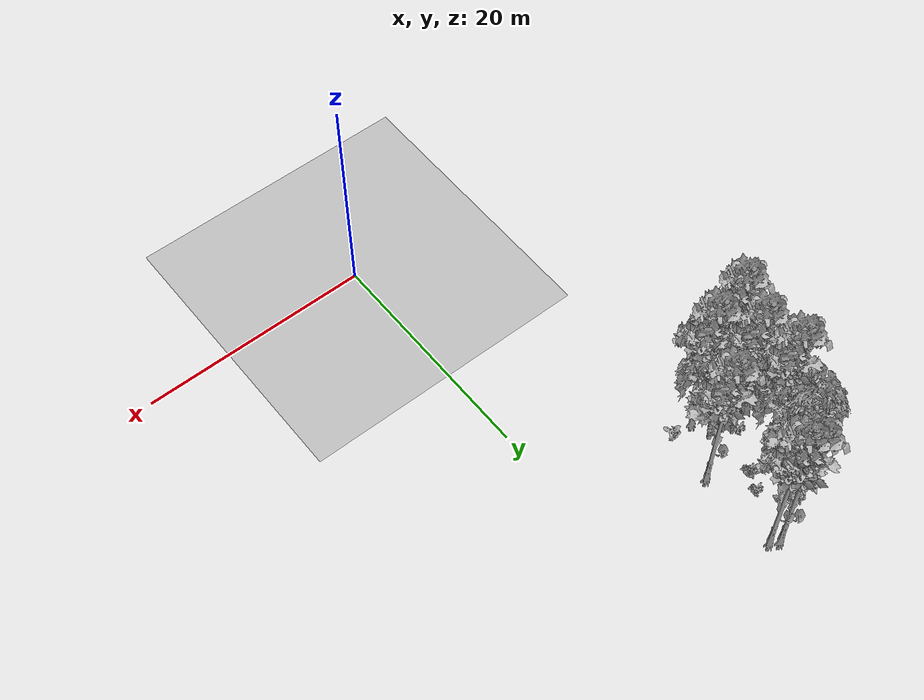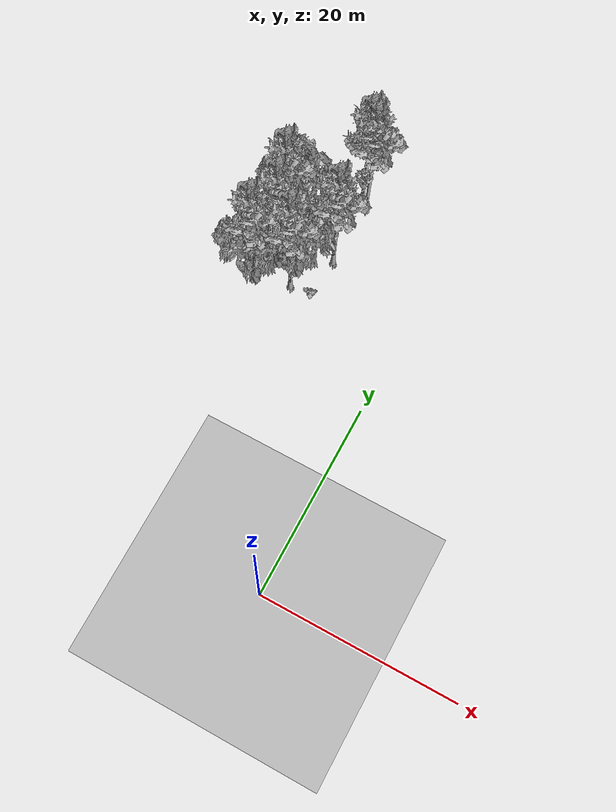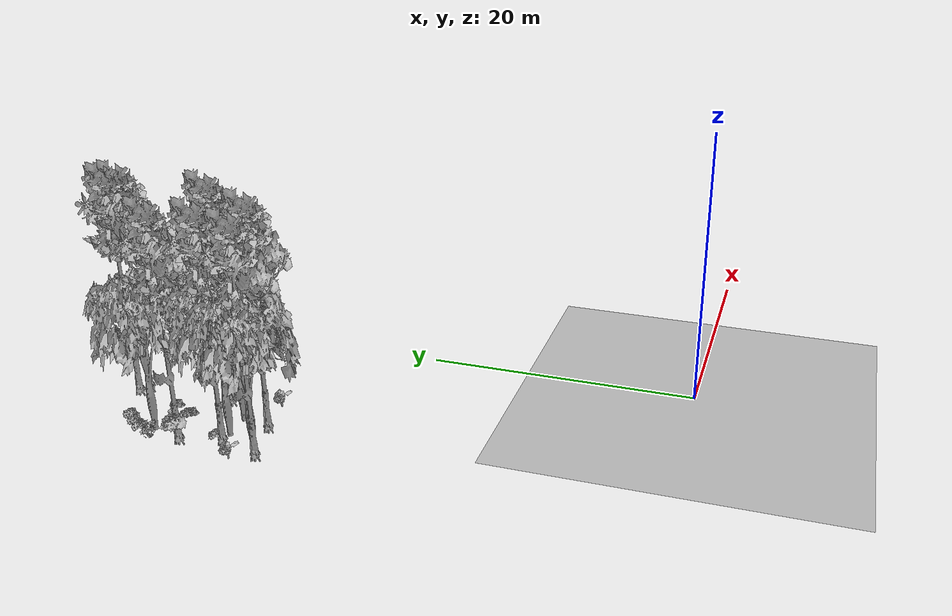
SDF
<sdf version="1.7">
 <world name="default">
  <model name="ground_plane">
   <static>1</static>
   <link name="link">
    <collision name="collision">
     <pose>-50 0 0 0 -0 0</pose>
     <geometry><plane><normal>0 0 1</normal><size>80 80</size></plane></geometry>
     <surface><contact><ode><min_depth>0.01</min_depth><max_vel>0</max_vel></ode></contact></surface>
    </collision>
    <visual name="grass">
     <cast_shadows>0</cast_shadows>
     <geometry>
      <mesh>
       <scale>0.46714285714285714 0.46714285714285714 0.1</scale>
       <uri>file://grass_plane/meshes/grass_plane.dae</uri>
      </mesh>
     </geometry>
    </visual>
   </link>
  </model>
  <model name="Tree 3">
   <static>1</static>
   <pose>-9.5421922092418 39.27774204575255 0 1.57079 -0 0</pose>
   <link name="link">
    <collision name="collision">
     <geometry><mesh><scale>3.5 5 3.5</scale><uri>model://tree_9/meshes/tree_9.obj</uri></mesh></geometry>
    </collision>
    <visual name="visual">
     <geometry><mesh><scale>3.5 5 3.5</scale><uri>model://tree_9/meshes/tree_9.obj</uri></mesh></geometry>
    </visual>
   </link>
  </model>
  <model name="Tree 19">
   <static>1</static>
   <pose>-14.435010337102057 29.73800944745875 0 1.57079 -0 0</pose>
   <link name="link">
    <collision name="collision">
     <geometry><mesh><scale>3.5 5 3.5</scale><uri>model://tree_2/meshes/tree_2.obj</uri></mesh></geometry>
    </collision>
    <visual name="visual">
     <geometry><mesh><scale>3.5 5 3.5</scale><uri>model://tree_2/meshes/tree_2.obj</uri></mesh></geometry>
    </visual>
   </link>
  </model>
  <model name="Tree 35">
   <static>1</static>
   <pose>-12.403865683885638 29.776129863272672 0 1.57079 -0 0</pose>
   <link name="link">
    <collision name="collision">
     <geometry><mesh><scale>3.5 5 3.5</scale><uri>model://tree_2/meshes/tree_2.obj</uri></mesh></geometry>
    </collision>
    <visual name="visual">
     <geometry><mesh><scale>3.5 5 3.5</scale><uri>model://tree_2/meshes/tree_2.obj</uri></mesh></geometry>
    </visual>
   </link>
  </model>
  <model name="Tree 48">
   <static>1</static>
   <pose>-15.622506386705606 27.21009930620589 0 1.57079 -0 0</pose>
   <link name="link">
    <collision name="collision">
     <geometry><mesh><scale>3.5 5 3.5</scale><uri>model://tree_9/meshes/tree_9.obj</uri></mesh></geometry>
    </collision>
    <visual name="visual">
     <geometry><mesh><scale>3.5 5 3.5</scale><uri>model://tree_9/meshes/tree_9.obj</uri></mesh></geometry>
    </visual>
   </link>
  </model>
  <model name="Tree 104">
   <static>1</static>
   <pose>-15.543162388622335 27.344211763779 0 1.57079 -0 0</pose>
   <link name="link">
    <collision name="collision">
     <geometry><mesh><scale>3.5 5 3.5</scale><uri>model://tree_2/meshes/tree_2.obj</uri></mesh></geometry>
    </collision>
    <visual name="visual">
     <geometry><mesh><scale>3.5 5 3.5</scale><uri>model://tree_2/meshes/tree_2.obj</uri></mesh></geometry>
    </visual>
   </link>
  </model>
  <model name="Tree 159">
   <static>1</static>
   <pose>-10.224188996341688 39.71371599480747 0 1.57079 -0 0</pose>
   <link name="link">
    <collision name="collision">
     <geometry><mesh><scale>3.5 5 3.5</scale><uri>model://tree_9/meshes/tree_9.obj</uri></mesh></geometry>
    </collision>
    <visual name="visual">
     <geometry><mesh><scale>3.5 5 3.5</scale><uri>model://tree_9/meshes/tree_9.obj</uri></mesh></geometry>
    </visual>
   </link>
  </model>
  <model name="Tree 296">
   <static>1</static>
   <pose>-15.242229467819381 35.08452450440916 0 1.57079 -0 0</pose>
   <link name="link">
    <collision name="collision">
     <geometry><mesh><scale>3.5 5 3.5</scale><uri>model://tree_2/meshes/tree_2.obj</uri></mesh></geometry>
    </collision>
    <visual name="visual">
     <geometry><mesh><scale>3.5 5 3.5</scale><uri>model://tree_2/meshes/tree_2.obj</uri></mesh></geometry>
    </visual>
   </link>
  </model>
  <model name="Tree 322">
   <static>1</static>
   <pose>-12.139037443287283 28.06415280238363 0 1.57079 -0 0</pose>
   <link name="link">
    <collision name="collision">
     <geometry><mesh><scale>3.5 5 3.5</scale><uri>model://tree_9/meshes/tree_9.obj</uri></mesh></geometry>
    </collision>
    <visual name="visual">
     <geometry><mesh><scale>3.5 5 3.5</scale><uri>model://tree_9/meshes/tree_9.obj</uri></mesh></geometry>
    </visual>
   </link>
  </model>
  <model name="Tree 410">
   <static>1</static>
   <pose>-14.568322799887763 30.27594175709484 0 1.57079 -0 0</pose>
   <link name="link">
    <collision name="collision">
     <geometry><mesh><scale>3.5 5 3.5</scale><uri>model://tree_9/meshes/tree_9.obj</uri></mesh></geometry>
    </collision>
    <visual name="visual">
     <geometry><mesh><scale>3.5 5 3.5</scale><uri>model://tree_9/meshes/tree_9.obj</uri></mesh></geometry>
    </visual>
   </link>
  </model>
  <model name="Tree 470">
   <static>1</static>
   <pose>-15.314775919343546 33.21569692411181 0 1.57079 -0 0</pose>
   <link name="link">
    <collision name="collision">
     <geometry><mesh><scale>3.5 5 3.5</scale><uri>model://tree_9/meshes/tree_9.obj</uri></mesh></geometry>
    </collision>
    <visual name="visual">
     <geometry><mesh><scale>3.5 5 3.5</scale><uri>model://tree_9/meshes/tree_9.obj</uri></mesh></geometry>
    </visual>
   </link>
  </model>
  <model name="Tree 550">
   <static>1</static>
   <pose>-9.635084598036368 32.35782786984353 0 1.57079 -0 0</pose>
   <link name="link">
    <collision name="collision">
     <geometry><mesh><scale>3.5 5 3.5</scale><uri>model://tree_9/meshes/tree_9.obj</uri></mesh></geometry>
    </collision>
    <visual name="visual">
     <geometry><mesh><scale>3.5 5 3.5</scale><uri>model://tree_9/meshes/tree_9.obj</uri></mesh></geometry>
    </visual>
   </link>
  </model>
  <model name="Bush 9">
   <static>1</static>
   <pose>-14.711560305437438 37.097601599377455 0 1.57079 -0 0</pose>
   <link name="link">
    <collision name="collision">
     <geometry><mesh><scale>2 2 2</scale><uri>model://bush_2/meshes/bush_2.obj</uri></mesh></geometry>
     <surface><contact><collide_without_contact>false</collide_without_contact></contact></surface>
    </collision>
    <visual name="visual">
     <geometry><mesh><scale>2 2 2</scale><uri>model://bush_2/meshes/bush_2.obj</uri></mesh></geometry>
    </visual>
   </link>
  </model>
  <model name="Bush 20">
   <static>1</static>
   <pose>-14.67533070310483 34.250292849628934 0 1.57079 -0 0</pose>
   <link name="link">
    <collision name="collision">
     <geometry><mesh><scale>2 2 2</scale><uri>model://bush_2/meshes/bush_2.obj</uri></mesh></geometry>
     <surface><contact><collide_without_contact>false</collide_without_contact></contact></surface>
    </collision>
    <visual name="visual">
     <geometry><mesh><scale>2 2 2</scale><uri>model://bush_2/meshes/bush_2.obj</uri></mesh></geometry>
    </visual>
   </link>
  </model>
  <model name="Bush 33">
   <static>1</static>
   <pose>-11.991060239042348 35.390673722926905 0 1.57079 -0 0</pose>
   <link name="link">
    <collision name="collision">
     <geometry><mesh><scale>2 2 2</scale><uri>model://bush_2/meshes/bush_2.obj</uri></mesh></geometry>
     <surface><contact><collide_without_contact>false</collide_without_contact></contact></surface>
    </collision>
    <visual name="visual">
     <geometry><mesh><scale>2 2 2</scale><uri>model://bush_2/meshes/bush_2.obj</uri></mesh></geometry>
    </visual>
   </link>
  </model>
  <model name="Bush 178">
   <static>1</static>
   <pose>-14.033733256788246 37.88514602820143 0 1.57079 -0 0</pose>
   <link name="link">
    <collision name="collision">
     <geometry><mesh><scale>2 2 2</scale><uri>model://bush_2/meshes/bush_2.obj</uri></mesh></geometry>
     <surface><contact><collide_without_contact>false</collide_without_contact></contact></surface>
    </collision>
    <visual name="visual">
     <geometry><mesh><scale>2 2 2</scale><uri>model://bush_2/meshes/bush_2.obj</uri></mesh></geometry>
    </visual>
   </link>
  </model>
  <model name="Bush 219">
   <static>1</static>
   <pose>-12.70381020477501 33.8205823773188 0 1.57079 -0 0</pose>
   <link name="link">
    <collision name="collision">
     <geometry><mesh><scale>2 2 2</scale><uri>model://bush_2/meshes/bush_2.obj</uri></mesh></geometry>
     <surface><contact><collide_without_contact>false</collide_without_contact></contact></surface>
    </collision>
    <visual name="visual">
     <geometry><mesh><scale>2 2 2</scale><uri>model://bush_2/meshes/bush_2.obj</uri></mesh></geometry>
    </visual>
   </link>
  </model>
  <model name="Bush 225">
   <static>1</static>
   <pose>-16.987587127615516 28.390728275133867 0 1.57079 -0 0</pose>
   <link name="link">
    <collision name="collision">
     <geometry><mesh><scale>2 2 2</scale><uri>model://bush_0/meshes/bush_0.obj</uri></mesh></geometry>
     <surface><contact><collide_without_contact>false</collide_without_contact></contact></surface>
    </collision>
    <visual name="visual">
     <geometry><mesh><scale>2 2 2</scale><uri>model://bush_0/meshes/bush_0.obj</uri></mesh></geometry>
    </visual>
   </link>
  </model>
  <model name="Bush 372">
   <static>1</static>
   <pose>-15.440650795324828 33.22850985493298 0 1.57079 -0 0</pose>
   <link name="link">
    <collision name="collision">
     <geometry><mesh><scale>2 2 2</scale><uri>model://bush_1/meshes/bush_1.obj</uri></mesh></geometry>
     <surface><contact><collide_without_contact>false</collide_without_contact></contact></surface>
    </collision>
    <visual name="visual">
     <geometry><mesh><scale>2 2 2</scale><uri>model://bush_1/meshes/bush_1.obj</uri></mesh></geometry>
    </visual>
   </link>
  </model>
  <model name="Bush 414">
   <static>1</static>
   <pose>-12.840261595971544 34.035976772929274 0 1.57079 -0 0</pose>
   <link name="link">
    <collision name="collision">
     <geometry><mesh><scale>2 2 2</scale><uri>model://bush_2/meshes/bush_2.obj</uri></mesh></geometry>
     <surface><contact><collide_without_contact>false</collide_without_contact></contact></surface>
    </collision>
    <visual name="visual">
     <geometry><mesh><scale>2 2 2</scale><uri>model://bush_2/meshes/bush_2.obj</uri></mesh></geometry>
    </visual>
   </link>
  </model>
  <model name="Bush 493">
   <static>1</static>
   <pose>-15.318884751350218 36.327096410885304 0 1.57079 -0 0</pose>
   <link name="link">
    <collision name="collision">
     <geometry><mesh><scale>2 2 2</scale><uri>model://bush_2/meshes/bush_2.obj</uri></mesh></geometry>
     <surface><contact><collide_without_contact>false</collide_without_contact></contact></surface>
    </collision>
    <visual name="visual">
     <geometry><mesh><scale>2 2 2</scale><uri>model://bush_2/meshes/bush_2.obj</uri></mesh></geometry>
    </visual>
   </link>
  </model>
  <model name="Bush 516">
   <static>1</static>
   <pose>-14.734141802044743 30.647174843699048 0 1.57079 -0 0</pose>
   <link name="link">
    <collision name="collision">
     <geometry><mesh><scale>2 2 2</scale><uri>model://bush_2/meshes/bush_2.obj</uri></mesh></geometry>
     <surface><contact><collide_without_contact>false</collide_without_contact></contact></surface>
    </collision>
    <visual name="visual">
     <geometry><mesh><scale>2 2 2</scale><uri>model://bush_2/meshes/bush_2.obj</uri></mesh></geometry>
    </visual>
   </link>
  </model>
  <model name="Bush 589">
   <static>1</static>
   <pose>-16.23305594581268 34.828460392466084 0 1.57079 -0 0</pose>
   <link name="link">
    <collision name="collision">
     <geometry><mesh><scale>2 2 2</scale><uri>model://bush_4/meshes/bush_4.obj</uri></mesh></geometry>
     <surface><contact><collide_without_contact>false</collide_without_contact></contact></surface>
    </collision>
    <visual name="visual">
     <geometry><mesh><scale>2 2 2</scale><uri>model://bush_4/meshes/bush_4.obj</uri></mesh></geometry>
    </visual>
   </link>
  </model>
  <model name="Bush 605">
   <static>1</static>
   <pose>-9.873221691799927 28.13143338716634 0 1.57079 -0 0</pose>
   <link name="link">
    <collision name="collision">
     <geometry><mesh><scale>2 2 2</scale><uri>model://bush_0/meshes/bush_0.obj</uri></mesh></geometry>
     <surface><contact><collide_without_contact>false</collide_without_contact></contact></surface>
    </collision>
    <visual name="visual">
     <geometry><mesh><scale>2 2 2</scale><uri>model://bush_0/meshes/bush_0.obj</uri></mesh></geometry>
    </visual>
   </link>
  </model>
 </world>
</sdf>
